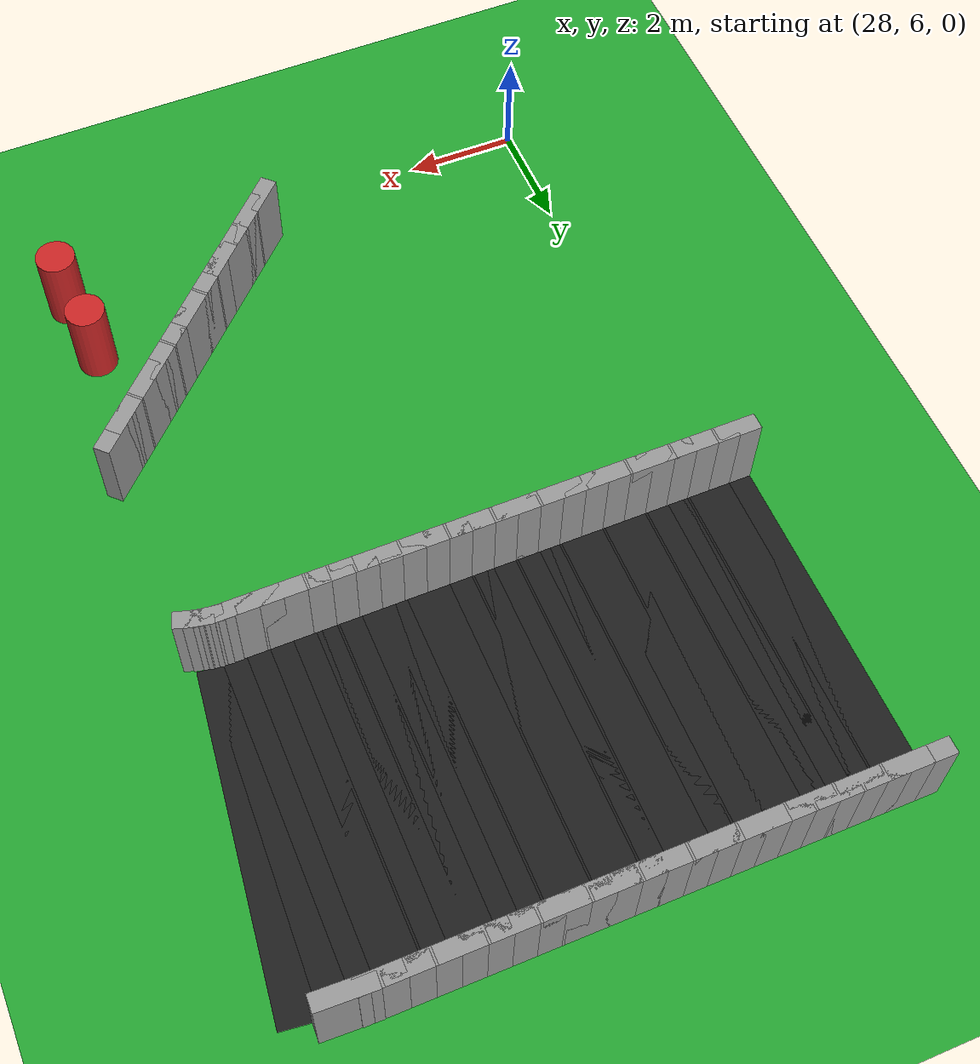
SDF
<sdf version="1.6">
 <world name="obstacle_mid">
  <include><uri>model://sun</uri></include>
  <model name="ground_plane">
   <static>true</static>
   <link name="link">
    <collision name="collision">
     <surface><friction><ode><mu>100</mu><mu2>50</mu2></ode></friction></surface>
     <geometry><plane><normal>0 0 1</normal><size>120 120</size></plane></geometry>
    </collision>
    <visual name="visual">
     <geometry><plane><normal>0 0 1</normal><size>120 120</size></plane></geometry>
     <material>
      <script><uri>file://media/materials/scripts/gazebo.material</uri><name>Gazebo/Green</name></script>
     </material>
    </visual>
   </link>
  </model>
  <model name="curbL_92">
   <static>true</static>
   <pose>33.248 6.732 0.750 0 0 0.78540</pose>
   <link name="link">
    <collision name="collision"><geometry><box><size>0.760 0.300 1.500</size></box></geometry></collision>
    <visual name="visual">
     <geometry><box><size>0.760 0.300 1.500</size></box></geometry>
     <material>
      <script><uri>file://media/materials/scripts/gazebo.material</uri><name>Gazebo/Grey</name></script>
     </material>
    </visual>
   </link>
  </model>
  <model name="curbL_93">
   <static>true</static>
   <pose>33.531 7.015 0.750 0 0 0.78540</pose>
   <link name="link">
    <collision name="collision"><geometry><box><size>0.760 0.300 1.500</size></box></geometry></collision>
    <visual name="visual">
     <geometry><box><size>0.760 0.300 1.500</size></box></geometry>
     <material>
      <script><uri>file://media/materials/scripts/gazebo.material</uri><name>Gazebo/Grey</name></script>
     </material>
    </visual>
   </link>
  </model>
  <model name="curbL_94">
   <static>true</static>
   <pose>33.814 7.298 0.750 0 0 0.78540</pose>
   <link name="link">
    <collision name="collision"><geometry><box><size>0.760 0.300 1.500</size></box></geometry></collision>
    <visual name="visual">
     <geometry><box><size>0.760 0.300 1.500</size></box></geometry>
     <material>
      <script><uri>file://media/materials/scripts/gazebo.material</uri><name>Gazebo/Grey</name></script>
     </material>
    </visual>
   </link>
  </model>
  <model name="curbL_95">
   <static>true</static>
   <pose>34.097 7.581 0.750 0 0 0.78540</pose>
   <link name="link">
    <collision name="collision"><geometry><box><size>0.760 0.300 1.500</size></box></geometry></collision>
    <visual name="visual">
     <geometry><box><size>0.760 0.300 1.500</size></box></geometry>
     <material>
      <script><uri>file://media/materials/scripts/gazebo.material</uri><name>Gazebo/Grey</name></script>
     </material>
    </visual>
   </link>
  </model>
  <model name="curbL_96">
   <static>true</static>
   <pose>34.380 7.864 0.750 0 0 0.78540</pose>
   <link name="link">
    <collision name="collision"><geometry><box><size>0.760 0.300 1.500</size></box></geometry></collision>
    <visual name="visual">
     <geometry><box><size>0.760 0.300 1.500</size></box></geometry>
     <material>
      <script><uri>file://media/materials/scripts/gazebo.material</uri><name>Gazebo/Grey</name></script>
     </material>
    </visual>
   </link>
  </model>
  <model name="curbL_97">
   <static>true</static>
   <pose>34.662 8.146 0.750 0 0 0.78540</pose>
   <link name="link">
    <collision name="collision"><geometry><box><size>0.760 0.300 1.500</size></box></geometry></collision>
    <visual name="visual">
     <geometry><box><size>0.760 0.300 1.500</size></box></geometry>
     <material>
      <script><uri>file://media/materials/scripts/gazebo.material</uri><name>Gazebo/Grey</name></script>
     </material>
    </visual>
   </link>
  </model>
  <model name="curbL_98">
   <static>true</static>
   <pose>34.945 8.429 0.750 0 0 0.78540</pose>
   <link name="link">
    <collision name="collision"><geometry><box><size>0.760 0.300 1.500</size></box></geometry></collision>
    <visual name="visual">
     <geometry><box><size>0.760 0.300 1.500</size></box></geometry>
     <material>
      <script><uri>file://media/materials/scripts/gazebo.material</uri><name>Gazebo/Grey</name></script>
     </material>
    </visual>
   </link>
  </model>
  <model name="curbL_99">
   <static>true</static>
   <pose>35.228 8.712 0.750 0 0 0.78540</pose>
   <link name="link">
    <collision name="collision"><geometry><box><size>0.760 0.300 1.500</size></box></geometry></collision>
    <visual name="visual">
     <geometry><box><size>0.760 0.300 1.500</size></box></geometry>
     <material>
      <script><uri>file://media/materials/scripts/gazebo.material</uri><name>Gazebo/Grey</name></script>
     </material>
    </visual>
   </link>
  </model>
  <model name="curbL_100">
   <static>true</static>
   <pose>35.511 8.995 0.750 0 0 0.78540</pose>
   <link name="link">
    <collision name="collision"><geometry><box><size>0.760 0.300 1.500</size></box></geometry></collision>
    <visual name="visual">
     <geometry><box><size>0.760 0.300 1.500</size></box></geometry>
     <material>
      <script><uri>file://media/materials/scripts/gazebo.material</uri><name>Gazebo/Grey</name></script>
     </material>
    </visual>
   </link>
  </model>
  <model name="curbL_101">
   <static>true</static>
   <pose>35.794 9.278 0.750 0 0 0.78540</pose>
   <link name="link">
    <collision name="collision"><geometry><box><size>0.760 0.300 1.500</size></box></geometry></collision>
    <visual name="visual">
     <geometry><box><size>0.760 0.300 1.500</size></box></geometry>
     <material>
      <script><uri>file://media/materials/scripts/gazebo.material</uri><name>Gazebo/Grey</name></script>
     </material>
    </visual>
   </link>
  </model>
  <model name="curbL_102">
   <static>true</static>
   <pose>36.077 9.561 0.750 0 0 0.78540</pose>
   <link name="link">
    <collision name="collision"><geometry><box><size>0.760 0.300 1.500</size></box></geometry></collision>
    <visual name="visual">
     <geometry><box><size>0.760 0.300 1.500</size></box></geometry>
     <material>
      <script><uri>file://media/materials/scripts/gazebo.material</uri><name>Gazebo/Grey</name></script>
     </material>
    </visual>
   </link>
  </model>
  <model name="curbL_103">
   <static>true</static>
   <pose>36.359 9.843 0.750 0 0 0.78540</pose>
   <link name="link">
    <collision name="collision"><geometry><box><size>0.760 0.300 1.500</size></box></geometry></collision>
    <visual name="visual">
     <geometry><box><size>0.760 0.300 1.500</size></box></geometry>
     <material>
      <script><uri>file://media/materials/scripts/gazebo.material</uri><name>Gazebo/Grey</name></script>
     </material>
    </visual>
   </link>
  </model>
  <model name="curbL_104">
   <static>true</static>
   <pose>36.642 10.126 0.750 0 0 0.78540</pose>
   <link name="link">
    <collision name="collision"><geometry><box><size>0.760 0.300 1.500</size></box></geometry></collision>
    <visual name="visual">
     <geometry><box><size>0.760 0.300 1.500</size></box></geometry>
     <material>
      <script><uri>file://media/materials/scripts/gazebo.material</uri><name>Gazebo/Grey</name></script>
     </material>
    </visual>
   </link>
  </model>
  <model name="curbL_105">
   <static>true</static>
   <pose>36.925 10.409 0.750 0 0 0.78540</pose>
   <link name="link">
    <collision name="collision"><geometry><box><size>0.760 0.300 1.500</size></box></geometry></collision>
    <visual name="visual">
     <geometry><box><size>0.760 0.300 1.500</size></box></geometry>
     <material>
      <script><uri>file://media/materials/scripts/gazebo.material</uri><name>Gazebo/Grey</name></script>
     </material>
    </visual>
   </link>
  </model>
  <model name="curbL_106">
   <static>true</static>
   <pose>37.208 10.692 0.750 0 0 0.78540</pose>
   <link name="link">
    <collision name="collision"><geometry><box><size>0.760 0.300 1.500</size></box></geometry></collision>
    <visual name="visual">
     <geometry><box><size>0.760 0.300 1.500</size></box></geometry>
     <material>
      <script><uri>file://media/materials/scripts/gazebo.material</uri><name>Gazebo/Grey</name></script>
     </material>
    </visual>
   </link>
  </model>
  <model name="curbL_134">
   <static>true</static>
   <pose>37.125 14.484 0.750 0 0 2.85722</pose>
   <link name="link">
    <collision name="collision"><geometry><box><size>0.510 0.300 1.500</size></box></geometry></collision>
    <visual name="visual">
     <geometry><box><size>0.510 0.300 1.500</size></box></geometry>
     <material>
      <script><uri>file://media/materials/scripts/gazebo.material</uri><name>Gazebo/Grey</name></script>
     </material>
    </visual>
   </link>
  </model>
  <model name="curbL_135">
   <static>true</static>
   <pose>36.979 14.520 0.750 0 0 2.93847</pose>
   <link name="link">
    <collision name="collision"><geometry><box><size>0.510 0.300 1.500</size></box></geometry></collision>
    <visual name="visual">
     <geometry><box><size>0.510 0.300 1.500</size></box></geometry>
     <material>
      <script><uri>file://media/materials/scripts/gazebo.material</uri><name>Gazebo/Grey</name></script>
     </material>
    </visual>
   </link>
  </model>
  <model name="asphalt_136">
   <static>true</static>
   <pose>37.214 17.668 0.005 0 0 3.01972</pose>
   <link name="link">
    <visual name="visual">
     <geometry><box><size>0.766 6.000 0.010</size></box></geometry>
     <material>
      <script><uri>file://media/materials/scripts/gazebo.material</uri><name>Gazebo/Black</name></script>
     </material>
    </visual>
   </link>
  </model>
  <model name="curbL_136">
   <static>true</static>
   <pose>36.831 14.544 0.750 0 0 3.01972</pose>
   <link name="link">
    <collision name="collision"><geometry><box><size>0.510 0.300 1.500</size></box></geometry></collision>
    <visual name="visual">
     <geometry><box><size>0.510 0.300 1.500</size></box></geometry>
     <material>
      <script><uri>file://media/materials/scripts/gazebo.material</uri><name>Gazebo/Grey</name></script>
     </material>
    </visual>
   </link>
  </model>
  <model name="asphalt_137">
   <static>true</static>
   <pose>36.809 17.701 0.005 0 0 3.10097</pose>
   <link name="link">
    <visual name="visual">
     <geometry><box><size>0.766 6.000 0.010</size></box></geometry>
     <material>
      <script><uri>file://media/materials/scripts/gazebo.material</uri><name>Gazebo/Black</name></script>
     </material>
    </visual>
   </link>
  </model>
  <model name="curbL_137">
   <static>true</static>
   <pose>36.681 14.557 0.750 0 0 3.10097</pose>
   <link name="link">
    <collision name="collision"><geometry><box><size>0.510 0.300 1.500</size></box></geometry></collision>
    <visual name="visual">
     <geometry><box><size>0.510 0.300 1.500</size></box></geometry>
     <material>
      <script><uri>file://media/materials/scripts/gazebo.material</uri><name>Gazebo/Grey</name></script>
     </material>
    </visual>
   </link>
  </model>
  <model name="curbR_137">
   <static>true</static>
   <pose>36.937 20.846 0.750 0 0 3.10097</pose>
   <link name="link">
    <collision name="collision"><geometry><box><size>1.022 0.300 1.500</size></box></geometry></collision>
    <visual name="visual">
     <geometry><box><size>1.022 0.300 1.500</size></box></geometry>
     <material>
      <script><uri>file://media/materials/scripts/gazebo.material</uri><name>Gazebo/Grey</name></script>
     </material>
    </visual>
   </link>
  </model>
  <model name="asphalt_138">
   <static>true</static>
   <pose>36.406 17.710 0.005 0 0 3.14159</pose>
   <link name="link">
    <visual name="visual">
     <geometry><box><size>0.760 6.000 0.010</size></box></geometry>
     <material>
      <script><uri>file://media/materials/scripts/gazebo.material</uri><name>Gazebo/Black</name></script>
     </material>
    </visual>
   </link>
  </model>
  <model name="curbL_138">
   <static>true</static>
   <pose>36.406 14.560 0.750 0 0 3.14159</pose>
   <link name="link">
    <collision name="collision"><geometry><box><size>0.760 0.300 1.500</size></box></geometry></collision>
    <visual name="visual">
     <geometry><box><size>0.760 0.300 1.500</size></box></geometry>
     <material>
      <script><uri>file://media/materials/scripts/gazebo.material</uri><name>Gazebo/Grey</name></script>
     </material>
    </visual>
   </link>
  </model>
  <model name="curbR_138">
   <static>true</static>
   <pose>36.406 20.860 0.750 0 0 3.14159</pose>
   <link name="link">
    <collision name="collision"><geometry><box><size>0.760 0.300 1.500</size></box></geometry></collision>
    <visual name="visual">
     <geometry><box><size>0.760 0.300 1.500</size></box></geometry>
     <material>
      <script><uri>file://media/materials/scripts/gazebo.material</uri><name>Gazebo/Grey</name></script>
     </material>
    </visual>
   </link>
  </model>
  <model name="asphalt_139">
   <static>true</static>
   <pose>36.006 17.710 0.005 0 0 3.14159</pose>
   <link name="link">
    <visual name="visual">
     <geometry><box><size>0.760 6.000 0.010</size></box></geometry>
     <material>
      <script><uri>file://media/materials/scripts/gazebo.material</uri><name>Gazebo/Black</name></script>
     </material>
    </visual>
   </link>
  </model>
  <model name="curbL_139">
   <static>true</static>
   <pose>36.006 14.560 0.750 0 0 3.14159</pose>
   <link name="link">
    <collision name="collision"><geometry><box><size>0.760 0.300 1.500</size></box></geometry></collision>
    <visual name="visual">
     <geometry><box><size>0.760 0.300 1.500</size></box></geometry>
     <material>
      <script><uri>file://media/materials/scripts/gazebo.material</uri><name>Gazebo/Grey</name></script>
     </material>
    </visual>
   </link>
  </model>
  <model name="curbR_139">
   <static>true</static>
   <pose>36.006 20.860 0.750 0 0 3.14159</pose>
   <link name="link">
    <collision name="collision"><geometry><box><size>0.760 0.300 1.500</size></box></geometry></collision>
    <visual name="visual">
     <geometry><box><size>0.760 0.300 1.500</size></box></geometry>
     <material>
      <script><uri>file://media/materials/scripts/gazebo.material</uri><name>Gazebo/Grey</name></script>
     </material>
    </visual>
   </link>
  </model>
  <model name="asphalt_140">
   <static>true</static>
   <pose>35.606 17.710 0.005 0 0 3.14159</pose>
   <link name="link">
    <visual name="visual">
     <geometry><box><size>0.760 6.000 0.010</size></box></geometry>
     <material>
      <script><uri>file://media/materials/scripts/gazebo.material</uri><name>Gazebo/Black</name></script>
     </material>
    </visual>
   </link>
  </model>
  <model name="curbL_140">
   <static>true</static>
   <pose>35.606 14.560 0.750 0 0 3.14159</pose>
   <link name="link">
    <collision name="collision"><geometry><box><size>0.760 0.300 1.500</size></box></geometry></collision>
    <visual name="visual">
     <geometry><box><size>0.760 0.300 1.500</size></box></geometry>
     <material>
      <script><uri>file://media/materials/scripts/gazebo.material</uri><name>Gazebo/Grey</name></script>
     </material>
    </visual>
   </link>
  </model>
  <model name="curbR_140">
   <static>true</static>
   <pose>35.606 20.860 0.750 0 0 3.14159</pose>
   <link name="link">
    <collision name="collision"><geometry><box><size>0.760 0.300 1.500</size></box></geometry></collision>
    <visual name="visual">
     <geometry><box><size>0.760 0.300 1.500</size></box></geometry>
     <material>
      <script><uri>file://media/materials/scripts/gazebo.material</uri><name>Gazebo/Grey</name></script>
     </material>
    </visual>
   </link>
  </model>
  <model name="asphalt_141">
   <static>true</static>
   <pose>35.206 17.710 0.005 0 0 3.14159</pose>
   <link name="link">
    <visual name="visual">
     <geometry><box><size>0.760 6.000 0.010</size></box></geometry>
     <material>
      <script><uri>file://media/materials/scripts/gazebo.material</uri><name>Gazebo/Black</name></script>
     </material>
    </visual>
   </link>
  </model>
  <model name="curbL_141">
   <static>true</static>
   <pose>35.206 14.560 0.750 0 0 3.14159</pose>
   <link name="link">
    <collision name="collision"><geometry><box><size>0.760 0.300 1.500</size></box></geometry></collision>
    <visual name="visual">
     <geometry><box><size>0.760 0.300 1.500</size></box></geometry>
     <material>
      <script><uri>file://media/materials/scripts/gazebo.material</uri><name>Gazebo/Grey</name></script>
     </material>
    </visual>
   </link>
  </model>
  <model name="curbR_141">
   <static>true</static>
   <pose>35.206 20.860 0.750 0 0 3.14159</pose>
   <link name="link">
    <collision name="collision"><geometry><box><size>0.760 0.300 1.500</size></box></geometry></collision>
    <visual name="visual">
     <geometry><box><size>0.760 0.300 1.500</size></box></geometry>
     <material>
      <script><uri>file://media/materials/scripts/gazebo.material</uri><name>Gazebo/Grey</name></script>
     </material>
    </visual>
   </link>
  </model>
  <model name="asphalt_142">
   <static>true</static>
   <pose>34.806 17.710 0.005 0 0 3.14159</pose>
   <link name="link">
    <visual name="visual">
     <geometry><box><size>0.760 6.000 0.010</size></box></geometry>
     <material>
      <script><uri>file://media/materials/scripts/gazebo.material</uri><name>Gazebo/Black</name></script>
     </material>
    </visual>
   </link>
  </model>
  <model name="curbL_142">
   <static>true</static>
   <pose>34.806 14.560 0.750 0 0 3.14159</pose>
   <link name="link">
    <collision name="collision"><geometry><box><size>0.760 0.300 1.500</size></box></geometry></collision>
    <visual name="visual">
     <geometry><box><size>0.760 0.300 1.500</size></box></geometry>
     <material>
      <script><uri>file://media/materials/scripts/gazebo.material</uri><name>Gazebo/Grey</name></script>
     </material>
    </visual>
   </link>
  </model>
  <model name="curbR_142">
   <static>true</static>
   <pose>34.806 20.860 0.750 0 0 3.14159</pose>
   <link name="link">
    <collision name="collision"><geometry><box><size>0.760 0.300 1.500</size></box></geometry></collision>
    <visual name="visual">
     <geometry><box><size>0.760 0.300 1.500</size></box></geometry>
     <material>
      <script><uri>file://media/materials/scripts/gazebo.material</uri><name>Gazebo/Grey</name></script>
     </material>
    </visual>
   </link>
  </model>
  <model name="asphalt_143">
   <static>true</static>
   <pose>34.406 17.710 0.005 0 0 3.14159</pose>
   <link name="link">
    <visual name="visual">
     <geometry><box><size>0.760 6.000 0.010</size></box></geometry>
     <material>
      <script><uri>file://media/materials/scripts/gazebo.material</uri><name>Gazebo/Black</name></script>
     </material>
    </visual>
   </link>
  </model>
  <model name="curbL_143">
   <static>true</static>
   <pose>34.406 14.560 0.750 0 0 3.14159</pose>
   <link name="link">
    <collision name="collision"><geometry><box><size>0.760 0.300 1.500</size></box></geometry></collision>
    <visual name="visual">
     <geometry><box><size>0.760 0.300 1.500</size></box></geometry>
     <material>
      <script><uri>file://media/materials/scripts/gazebo.material</uri><name>Gazebo/Grey</name></script>
     </material>
    </visual>
   </link>
  </model>
  <model name="curbR_143">
   <static>true</static>
   <pose>34.406 20.860 0.750 0 0 3.14159</pose>
   <link name="link">
    <collision name="collision"><geometry><box><size>0.760 0.300 1.500</size></box></geometry></collision>
    <visual name="visual">
     <geometry><box><size>0.760 0.300 1.500</size></box></geometry>
     <material>
      <script><uri>file://media/materials/scripts/gazebo.material</uri><name>Gazebo/Grey</name></script>
     </material>
    </visual>
   </link>
  </model>
  <model name="asphalt_144">
   <static>true</static>
   <pose>34.006 17.710 0.005 0 0 3.14159</pose>
   <link name="link">
    <visual name="visual">
     <geometry><box><size>0.760 6.000 0.010</size></box></geometry>
     <material>
      <script><uri>file://media/materials/scripts/gazebo.material</uri><name>Gazebo/Black</name></script>
     </material>
    </visual>
   </link>
  </model>
  <model name="curbL_144">
   <static>true</static>
   <pose>34.006 14.560 0.750 0 0 3.14159</pose>
   <link name="link">
    <collision name="collision"><geometry><box><size>0.760 0.300 1.500</size></box></geometry></collision>
    <visual name="visual">
     <geometry><box><size>0.760 0.300 1.500</size></box></geometry>
     <material>
      <script><uri>file://media/materials/scripts/gazebo.material</uri><name>Gazebo/Grey</name></script>
     </material>
    </visual>
   </link>
  </model>
  <model name="curbR_144">
   <static>true</static>
   <pose>34.006 20.860 0.750 0 0 3.14159</pose>
   <link name="link">
    <collision name="collision"><geometry><box><size>0.760 0.300 1.500</size></box></geometry></collision>
    <visual name="visual">
     <geometry><box><size>0.760 0.300 1.500</size></box></geometry>
     <material>
      <script><uri>file://media/materials/scripts/gazebo.material</uri><name>Gazebo/Grey</name></script>
     </material>
    </visual>
   </link>
  </model>
  <model name="asphalt_145">
   <static>true</static>
   <pose>33.606 17.710 0.005 0 0 3.14159</pose>
   <link name="link">
    <visual name="visual">
     <geometry><box><size>0.760 6.000 0.010</size></box></geometry>
     <material>
      <script><uri>file://media/materials/scripts/gazebo.material</uri><name>Gazebo/Black</name></script>
     </material>
    </visual>
   </link>
  </model>
  <model name="curbL_145">
   <static>true</static>
   <pose>33.606 14.560 0.750 0 0 3.14159</pose>
   <link name="link">
    <collision name="collision"><geometry><box><size>0.760 0.300 1.500</size></box></geometry></collision>
    <visual name="visual">
     <geometry><box><size>0.760 0.300 1.500</size></box></geometry>
     <material>
      <script><uri>file://media/materials/scripts/gazebo.material</uri><name>Gazebo/Grey</name></script>
     </material>
    </visual>
   </link>
  </model>
  <model name="curbR_145">
   <static>true</static>
   <pose>33.606 20.860 0.750 0 0 3.14159</pose>
   <link name="link">
    <collision name="collision"><geometry><box><size>0.760 0.300 1.500</size></box></geometry></collision>
    <visual name="visual">
     <geometry><box><size>0.760 0.300 1.500</size></box></geometry>
     <material>
      <script><uri>file://media/materials/scripts/gazebo.material</uri><name>Gazebo/Grey</name></script>
     </material>
    </visual>
   </link>
  </model>
  <model name="asphalt_146">
   <static>true</static>
   <pose>33.206 17.710 0.005 0 0 3.14159</pose>
   <link name="link">
    <visual name="visual">
     <geometry><box><size>0.760 6.000 0.010</size></box></geometry>
     <material>
      <script><uri>file://media/materials/scripts/gazebo.material</uri><name>Gazebo/Black</name></script>
     </material>
    </visual>
   </link>
  </model>
  <model name="curbL_146">
   <static>true</static>
   <pose>33.206 14.560 0.750 0 0 3.14159</pose>
   <link name="link">
    <collision name="collision"><geometry><box><size>0.760 0.300 1.500</size></box></geometry></collision>
    <visual name="visual">
     <geometry><box><size>0.760 0.300 1.500</size></box></geometry>
     <material>
      <script><uri>file://media/materials/scripts/gazebo.material</uri><name>Gazebo/Grey</name></script>
     </material>
    </visual>
   </link>
  </model>
  <model name="curbR_146">
   <static>true</static>
   <pose>33.206 20.860 0.750 0 0 3.14159</pose>
   <link name="link">
    <collision name="collision"><geometry><box><size>0.760 0.300 1.500</size></box></geometry></collision>
    <visual name="visual">
     <geometry><box><size>0.760 0.300 1.500</size></box></geometry>
     <material>
      <script><uri>file://media/materials/scripts/gazebo.material</uri><name>Gazebo/Grey</name></script>
     </material>
    </visual>
   </link>
  </model>
  <model name="asphalt_147">
   <static>true</static>
   <pose>32.806 17.710 0.005 0 0 3.14159</pose>
   <link name="link">
    <visual name="visual">
     <geometry><box><size>0.760 6.000 0.010</size></box></geometry>
     <material>
      <script><uri>file://media/materials/scripts/gazebo.material</uri><name>Gazebo/Black</name></script>
     </material>
    </visual>
   </link>
  </model>
  <model name="curbL_147">
   <static>true</static>
   <pose>32.806 14.560 0.750 0 0 3.14159</pose>
   <link name="link">
    <collision name="collision"><geometry><box><size>0.760 0.300 1.500</size></box></geometry></collision>
    <visual name="visual">
     <geometry><box><size>0.760 0.300 1.500</size></box></geometry>
     <material>
      <script><uri>file://media/materials/scripts/gazebo.material</uri><name>Gazebo/Grey</name></script>
     </material>
    </visual>
   </link>
  </model>
  <model name="curbR_147">
   <static>true</static>
   <pose>32.806 20.860 0.750 0 0 3.14159</pose>
   <link name="link">
    <collision name="collision"><geometry><box><size>0.760 0.300 1.500</size></box></geometry></collision>
    <visual name="visual">
     <geometry><box><size>0.760 0.300 1.500</size></box></geometry>
     <material>
      <script><uri>file://media/materials/scripts/gazebo.material</uri><name>Gazebo/Grey</name></script>
     </material>
    </visual>
   </link>
  </model>
  <model name="asphalt_148">
   <static>true</static>
   <pose>32.406 17.710 0.005 0 0 3.14159</pose>
   <link name="link">
    <visual name="visual">
     <geometry><box><size>0.760 6.000 0.010</size></box></geometry>
     <material>
      <script><uri>file://media/materials/scripts/gazebo.material</uri><name>Gazebo/Black</name></script>
     </material>
    </visual>
   </link>
  </model>
  <model name="curbL_148">
   <static>true</static>
   <pose>32.406 14.560 0.750 0 0 3.14159</pose>
   <link name="link">
    <collision name="collision"><geometry><box><size>0.760 0.300 1.500</size></box></geometry></collision>
    <visual name="visual">
     <geometry><box><size>0.760 0.300 1.500</size></box></geometry>
     <material>
      <script><uri>file://media/materials/scripts/gazebo.material</uri><name>Gazebo/Grey</name></script>
     </material>
    </visual>
   </link>
  </model>
  <model name="curbR_148">
   <static>true</static>
   <pose>32.406 20.860 0.750 0 0 3.14159</pose>
   <link name="link">
    <collision name="collision"><geometry><box><size>0.760 0.300 1.500</size></box></geometry></collision>
    <visual name="visual">
     <geometry><box><size>0.760 0.300 1.500</size></box></geometry>
     <material>
      <script><uri>file://media/materials/scripts/gazebo.material</uri><name>Gazebo/Grey</name></script>
     </material>
    </visual>
   </link>
  </model>
  <model name="asphalt_149">
   <static>true</static>
   <pose>32.006 17.710 0.005 0 0 3.14159</pose>
   <link name="link">
    <visual name="visual">
     <geometry><box><size>0.760 6.000 0.010</size></box></geometry>
     <material>
      <script><uri>file://media/materials/scripts/gazebo.material</uri><name>Gazebo/Black</name></script>
     </material>
    </visual>
   </link>
  </model>
  <model name="curbL_149">
   <static>true</static>
   <pose>32.006 14.560 0.750 0 0 3.14159</pose>
   <link name="link">
    <collision name="collision"><geometry><box><size>0.760 0.300 1.500</size></box></geometry></collision>
    <visual name="visual">
     <geometry><box><size>0.760 0.300 1.500</size></box></geometry>
     <material>
      <script><uri>file://media/materials/scripts/gazebo.material</uri><name>Gazebo/Grey</name></script>
     </material>
    </visual>
   </link>
  </model>
  <model name="curbR_149">
   <static>true</static>
   <pose>32.006 20.860 0.750 0 0 3.14159</pose>
   <link name="link">
    <collision name="collision"><geometry><box><size>0.760 0.300 1.500</size></box></geometry></collision>
    <visual name="visual">
     <geometry><box><size>0.760 0.300 1.500</size></box></geometry>
     <material>
      <script><uri>file://media/materials/scripts/gazebo.material</uri><name>Gazebo/Grey</name></script>
     </material>
    </visual>
   </link>
  </model>
  <model name="asphalt_150">
   <static>true</static>
   <pose>31.606 17.710 0.005 0 0 3.14159</pose>
   <link name="link">
    <visual name="visual">
     <geometry><box><size>0.760 6.000 0.010</size></box></geometry>
     <material>
      <script><uri>file://media/materials/scripts/gazebo.material</uri><name>Gazebo/Black</name></script>
     </material>
    </visual>
   </link>
  </model>
  <model name="curbL_150">
   <static>true</static>
   <pose>31.606 14.560 0.750 0 0 3.14159</pose>
   <link name="link">
    <collision name="collision"><geometry><box><size>0.760 0.300 1.500</size></box></geometry></collision>
    <visual name="visual">
     <geometry><box><size>0.760 0.300 1.500</size></box></geometry>
     <material>
      <script><uri>file://media/materials/scripts/gazebo.material</uri><name>Gazebo/Grey</name></script>
     </material>
    </visual>
   </link>
  </model>
  <model name="curbR_150">
   <static>true</static>
   <pose>31.606 20.860 0.750 0 0 3.14159</pose>
   <link name="link">
    <collision name="collision"><geometry><box><size>0.760 0.300 1.500</size></box></geometry></collision>
    <visual name="visual">
     <geometry><box><size>0.760 0.300 1.500</size></box></geometry>
     <material>
      <script><uri>file://media/materials/scripts/gazebo.material</uri><name>Gazebo/Grey</name></script>
     </material>
    </visual>
   </link>
  </model>
  <model name="asphalt_151">
   <static>true</static>
   <pose>31.206 17.710 0.005 0 0 3.14159</pose>
   <link name="link">
    <visual name="visual">
     <geometry><box><size>0.760 6.000 0.010</size></box></geometry>
     <material>
      <script><uri>file://media/materials/scripts/gazebo.material</uri><name>Gazebo/Black</name></script>
     </material>
    </visual>
   </link>
  </model>
  <model name="curbL_151">
   <static>true</static>
   <pose>31.206 14.560 0.750 0 0 3.14159</pose>
   <link name="link">
    <collision name="collision"><geometry><box><size>0.760 0.300 1.500</size></box></geometry></collision>
    <visual name="visual">
     <geometry><box><size>0.760 0.300 1.500</size></box></geometry>
     <material>
      <script><uri>file://media/materials/scripts/gazebo.material</uri><name>Gazebo/Grey</name></script>
     </material>
    </visual>
   </link>
  </model>
  <model name="curbR_151">
   <static>true</static>
   <pose>31.206 20.860 0.750 0 0 3.14159</pose>
   <link name="link">
    <collision name="collision"><geometry><box><size>0.760 0.300 1.500</size></box></geometry></collision>
    <visual name="visual">
     <geometry><box><size>0.760 0.300 1.500</size></box></geometry>
     <material>
      <script><uri>file://media/materials/scripts/gazebo.material</uri><name>Gazebo/Grey</name></script>
     </material>
    </visual>
   </link>
  </model>
  <model name="asphalt_152">
   <static>true</static>
   <pose>30.806 17.710 0.005 0 0 3.14159</pose>
   <link name="link">
    <visual name="visual">
     <geometry><box><size>0.760 6.000 0.010</size></box></geometry>
     <material>
      <script><uri>file://media/materials/scripts/gazebo.material</uri><name>Gazebo/Black</name></script>
     </material>
    </visual>
   </link>
  </model>
  <model name="curbL_152">
   <static>true</static>
   <pose>30.806 14.560 0.750 0 0 3.14159</pose>
   <link name="link">
    <collision name="collision"><geometry><box><size>0.760 0.300 1.500</size></box></geometry></collision>
    <visual name="visual">
     <geometry><box><size>0.760 0.300 1.500</size></box></geometry>
     <material>
      <script><uri>file://media/materials/scripts/gazebo.material</uri><name>Gazebo/Grey</name></script>
     </material>
    </visual>
   </link>
  </model>
  <model name="curbR_152">
   <static>true</static>
   <pose>30.806 20.860 0.750 0 0 3.14159</pose>
   <link name="link">
    <collision name="collision"><geometry><box><size>0.760 0.300 1.500</size></box></geometry></collision>
    <visual name="visual">
     <geometry><box><size>0.760 0.300 1.500</size></box></geometry>
     <material>
      <script><uri>file://media/materials/scripts/gazebo.material</uri><name>Gazebo/Grey</name></script>
     </material>
    </visual>
   </link>
  </model>
  <model name="asphalt_153">
   <static>true</static>
   <pose>30.406 17.710 0.005 0 0 3.14159</pose>
   <link name="link">
    <visual name="visual">
     <geometry><box><size>0.760 6.000 0.010</size></box></geometry>
     <material>
      <script><uri>file://media/materials/scripts/gazebo.material</uri><name>Gazebo/Black</name></script>
     </material>
    </visual>
   </link>
  </model>
  <model name="curbL_153">
   <static>true</static>
   <pose>30.406 14.560 0.750 0 0 3.14159</pose>
   <link name="link">
    <collision name="collision"><geometry><box><size>0.760 0.300 1.500</size></box></geometry></collision>
    <visual name="visual">
     <geometry><box><size>0.760 0.300 1.500</size></box></geometry>
     <material>
      <script><uri>file://media/materials/scripts/gazebo.material</uri><name>Gazebo/Grey</name></script>
     </material>
    </visual>
   </link>
  </model>
  <model name="curbR_153">
   <static>true</static>
   <pose>30.406 20.860 0.750 0 0 3.14159</pose>
   <link name="link">
    <collision name="collision"><geometry><box><size>0.760 0.300 1.500</size></box></geometry></collision>
    <visual name="visual">
     <geometry><box><size>0.760 0.300 1.500</size></box></geometry>
     <material>
      <script><uri>file://media/materials/scripts/gazebo.material</uri><name>Gazebo/Grey</name></script>
     </material>
    </visual>
   </link>
  </model>
  <model name="asphalt_154">
   <static>true</static>
   <pose>30.006 17.710 0.005 0 0 3.14159</pose>
   <link name="link">
    <visual name="visual">
     <geometry><box><size>0.760 6.000 0.010</size></box></geometry>
     <material>
      <script><uri>file://media/materials/scripts/gazebo.material</uri><name>Gazebo/Black</name></script>
     </material>
    </visual>
   </link>
  </model>
  <model name="curbL_154">
   <static>true</static>
   <pose>30.006 14.560 0.750 0 0 3.14159</pose>
   <link name="link">
    <collision name="collision"><geometry><box><size>0.760 0.300 1.500</size></box></geometry></collision>
    <visual name="visual">
     <geometry><box><size>0.760 0.300 1.500</size></box></geometry>
     <material>
      <script><uri>file://media/materials/scripts/gazebo.material</uri><name>Gazebo/Grey</name></script>
     </material>
    </visual>
   </link>
  </model>
  <model name="curbR_154">
   <static>true</static>
   <pose>30.006 20.860 0.750 0 0 3.14159</pose>
   <link name="link">
    <collision name="collision"><geometry><box><size>0.760 0.300 1.500</size></box></geometry></collision>
    <visual name="visual">
     <geometry><box><size>0.760 0.300 1.500</size></box></geometry>
     <material>
      <script><uri>file://media/materials/scripts/gazebo.material</uri><name>Gazebo/Grey</name></script>
     </material>
    </visual>
   </link>
  </model>
  <model name="asphalt_155">
   <static>true</static>
   <pose>29.606 17.710 0.005 0 0 3.14159</pose>
   <link name="link">
    <visual name="visual">
     <geometry><box><size>0.760 6.000 0.010</size></box></geometry>
     <material>
      <script><uri>file://media/materials/scripts/gazebo.material</uri><name>Gazebo/Black</name></script>
     </material>
    </visual>
   </link>
  </model>
  <model name="curbL_155">
   <static>true</static>
   <pose>29.606 14.560 0.750 0 0 3.14159</pose>
   <link name="link">
    <collision name="collision"><geometry><box><size>0.760 0.300 1.500</size></box></geometry></collision>
    <visual name="visual">
     <geometry><box><size>0.760 0.300 1.500</size></box></geometry>
     <material>
      <script><uri>file://media/materials/scripts/gazebo.material</uri><name>Gazebo/Grey</name></script>
     </material>
    </visual>
   </link>
  </model>
  <model name="curbR_155">
   <static>true</static>
   <pose>29.606 20.860 0.750 0 0 3.14159</pose>
   <link name="link">
    <collision name="collision"><geometry><box><size>0.760 0.300 1.500</size></box></geometry></collision>
    <visual name="visual">
     <geometry><box><size>0.760 0.300 1.500</size></box></geometry>
     <material>
      <script><uri>file://media/materials/scripts/gazebo.material</uri><name>Gazebo/Grey</name></script>
     </material>
    </visual>
   </link>
  </model>
  <model name="asphalt_156">
   <static>true</static>
   <pose>29.206 17.710 0.005 0 0 3.14159</pose>
   <link name="link">
    <visual name="visual">
     <geometry><box><size>0.760 6.000 0.010</size></box></geometry>
     <material>
      <script><uri>file://media/materials/scripts/gazebo.material</uri><name>Gazebo/Black</name></script>
     </material>
    </visual>
   </link>
  </model>
  <model name="curbL_156">
   <static>true</static>
   <pose>29.206 14.560 0.750 0 0 3.14159</pose>
   <link name="link">
    <collision name="collision"><geometry><box><size>0.760 0.300 1.500</size></box></geometry></collision>
    <visual name="visual">
     <geometry><box><size>0.760 0.300 1.500</size></box></geometry>
     <material>
      <script><uri>file://media/materials/scripts/gazebo.material</uri><name>Gazebo/Grey</name></script>
     </material>
    </visual>
   </link>
  </model>
  <model name="curbR_156">
   <static>true</static>
   <pose>29.206 20.860 0.750 0 0 3.14159</pose>
   <link name="link">
    <collision name="collision"><geometry><box><size>0.760 0.300 1.500</size></box></geometry></collision>
    <visual name="visual">
     <geometry><box><size>0.760 0.300 1.500</size></box></geometry>
     <material>
      <script><uri>file://media/materials/scripts/gazebo.material</uri><name>Gazebo/Grey</name></script>
     </material>
    </visual>
   </link>
  </model>
  <model name="asphalt_157">
   <static>true</static>
   <pose>28.806 17.710 0.005 0 0 3.14159</pose>
   <link name="link">
    <visual name="visual">
     <geometry><box><size>0.760 6.000 0.010</size></box></geometry>
     <material>
      <script><uri>file://media/materials/scripts/gazebo.material</uri><name>Gazebo/Black</name></script>
     </material>
    </visual>
   </link>
  </model>
  <model name="curbL_157">
   <static>true</static>
   <pose>28.806 14.560 0.750 0 0 3.14159</pose>
   <link name="link">
    <collision name="collision"><geometry><box><size>0.760 0.300 1.500</size></box></geometry></collision>
    <visual name="visual">
     <geometry><box><size>0.760 0.300 1.500</size></box></geometry>
     <material>
      <script><uri>file://media/materials/scripts/gazebo.material</uri><name>Gazebo/Grey</name></script>
     </material>
    </visual>
   </link>
  </model>
  <model name="curbR_157">
   <static>true</static>
   <pose>28.806 20.860 0.750 0 0 3.14159</pose>
   <link name="link">
    <collision name="collision"><geometry><box><size>0.760 0.300 1.500</size></box></geometry></collision>
    <visual name="visual">
     <geometry><box><size>0.760 0.300 1.500</size></box></geometry>
     <material>
      <script><uri>file://media/materials/scripts/gazebo.material</uri><name>Gazebo/Grey</name></script>
     </material>
    </visual>
   </link>
  </model>
  <model name="asphalt_158">
   <static>true</static>
   <pose>28.406 17.710 0.005 0 0 3.14159</pose>
   <link name="link">
    <visual name="visual">
     <geometry><box><size>0.760 6.000 0.010</size></box></geometry>
     <material>
      <script><uri>file://media/materials/scripts/gazebo.material</uri><name>Gazebo/Black</name></script>
     </material>
    </visual>
   </link>
  </model>
  <model name="curbL_158">
   <static>true</static>
   <pose>28.406 14.560 0.750 0 0 3.14159</pose>
   <link name="link">
    <collision name="collision"><geometry><box><size>0.760 0.300 1.500</size></box></geometry></collision>
    <visual name="visual">
     <geometry><box><size>0.760 0.300 1.500</size></box></geometry>
     <material>
      <script><uri>file://media/materials/scripts/gazebo.material</uri><name>Gazebo/Grey</name></script>
     </material>
    </visual>
   </link>
  </model>
  <model name="curbR_158">
   <static>true</static>
   <pose>28.406 20.860 0.750 0 0 3.14159</pose>
   <link name="link">
    <collision name="collision"><geometry><box><size>0.760 0.300 1.500</size></box></geometry></collision>
    <visual name="visual">
     <geometry><box><size>0.760 0.300 1.500</size></box></geometry>
     <material>
      <script><uri>file://media/materials/scripts/gazebo.material</uri><name>Gazebo/Grey</name></script>
     </material>
    </visual>
   </link>
  </model>
  <model name="asphalt_159">
   <static>true</static>
   <pose>28.006 17.710 0.005 0 0 3.14159</pose>
   <link name="link">
    <visual name="visual">
     <geometry><box><size>0.760 6.000 0.010</size></box></geometry>
     <material>
      <script><uri>file://media/materials/scripts/gazebo.material</uri><name>Gazebo/Black</name></script>
     </material>
    </visual>
   </link>
  </model>
  <model name="curbL_159">
   <static>true</static>
   <pose>28.006 14.560 0.750 0 0 3.14159</pose>
   <link name="link">
    <collision name="collision"><geometry><box><size>0.760 0.300 1.500</size></box></geometry></collision>
    <visual name="visual">
     <geometry><box><size>0.760 0.300 1.500</size></box></geometry>
     <material>
      <script><uri>file://media/materials/scripts/gazebo.material</uri><name>Gazebo/Grey</name></script>
     </material>
    </visual>
   </link>
  </model>
  <model name="curbR_159">
   <static>true</static>
   <pose>28.006 20.860 0.750 0 0 3.14159</pose>
   <link name="link">
    <collision name="collision"><geometry><box><size>0.760 0.300 1.500</size></box></geometry></collision>
    <visual name="visual">
     <geometry><box><size>0.760 0.300 1.500</size></box></geometry>
     <material>
      <script><uri>file://media/materials/scripts/gazebo.material</uri><name>Gazebo/Grey</name></script>
     </material>
    </visual>
   </link>
  </model>
  <model name="asphalt_160">
   <static>true</static>
   <pose>27.606 17.710 0.005 0 0 3.14159</pose>
   <link name="link">
    <visual name="visual">
     <geometry><box><size>0.760 6.000 0.010</size></box></geometry>
     <material>
      <script><uri>file://media/materials/scripts/gazebo.material</uri><name>Gazebo/Black</name></script>
     </material>
    </visual>
   </link>
  </model>
  <model name="curbL_160">
   <static>true</static>
   <pose>27.606 14.560 0.750 0 0 3.14159</pose>
   <link name="link">
    <collision name="collision"><geometry><box><size>0.760 0.300 1.500</size></box></geometry></collision>
    <visual name="visual">
     <geometry><box><size>0.760 0.300 1.500</size></box></geometry>
     <material>
      <script><uri>file://media/materials/scripts/gazebo.material</uri><name>Gazebo/Grey</name></script>
     </material>
    </visual>
   </link>
  </model>
  <model name="curbR_160">
   <static>true</static>
   <pose>27.606 20.860 0.750 0 0 3.14159</pose>
   <link name="link">
    <collision name="collision"><geometry><box><size>0.760 0.300 1.500</size></box></geometry></collision>
    <visual name="visual">
     <geometry><box><size>0.760 0.300 1.500</size></box></geometry>
     <material>
      <script><uri>file://media/materials/scripts/gazebo.material</uri><name>Gazebo/Grey</name></script>
     </material>
    </visual>
   </link>
  </model>
  <model name="obs_6">
   <static>true</static>
   <pose>37.055 6.715 0.750 0 0 0</pose>
   <link name="link">
    <collision name="collision">
     <geometry><cylinder><radius>0.350</radius><length>1.500</length></cylinder></geometry>
    </collision>
    <visual name="visual">
     <geometry><cylinder><radius>0.350</radius><length>1.500</length></cylinder></geometry>
     <material>
      <script><uri>file://media/materials/scripts/gazebo.material</uri><name>Gazebo/Red</name></script>
     </material>
    </visual>
   </link>
  </model>
  <model name="obs_8">
   <static>true</static>
   <pose>36.909 8.051 0.750 0 0 0</pose>
   <link name="link">
    <collision name="collision">
     <geometry><cylinder><radius>0.350</radius><length>1.500</length></cylinder></geometry>
    </collision>
    <visual name="visual">
     <geometry><cylinder><radius>0.350</radius><length>1.500</length></cylinder></geometry>
     <material>
      <script><uri>file://media/materials/scripts/gazebo.material</uri><name>Gazebo/Red</name></script>
     </material>
    </visual>
   </link>
  </model>
 </world>
</sdf>
